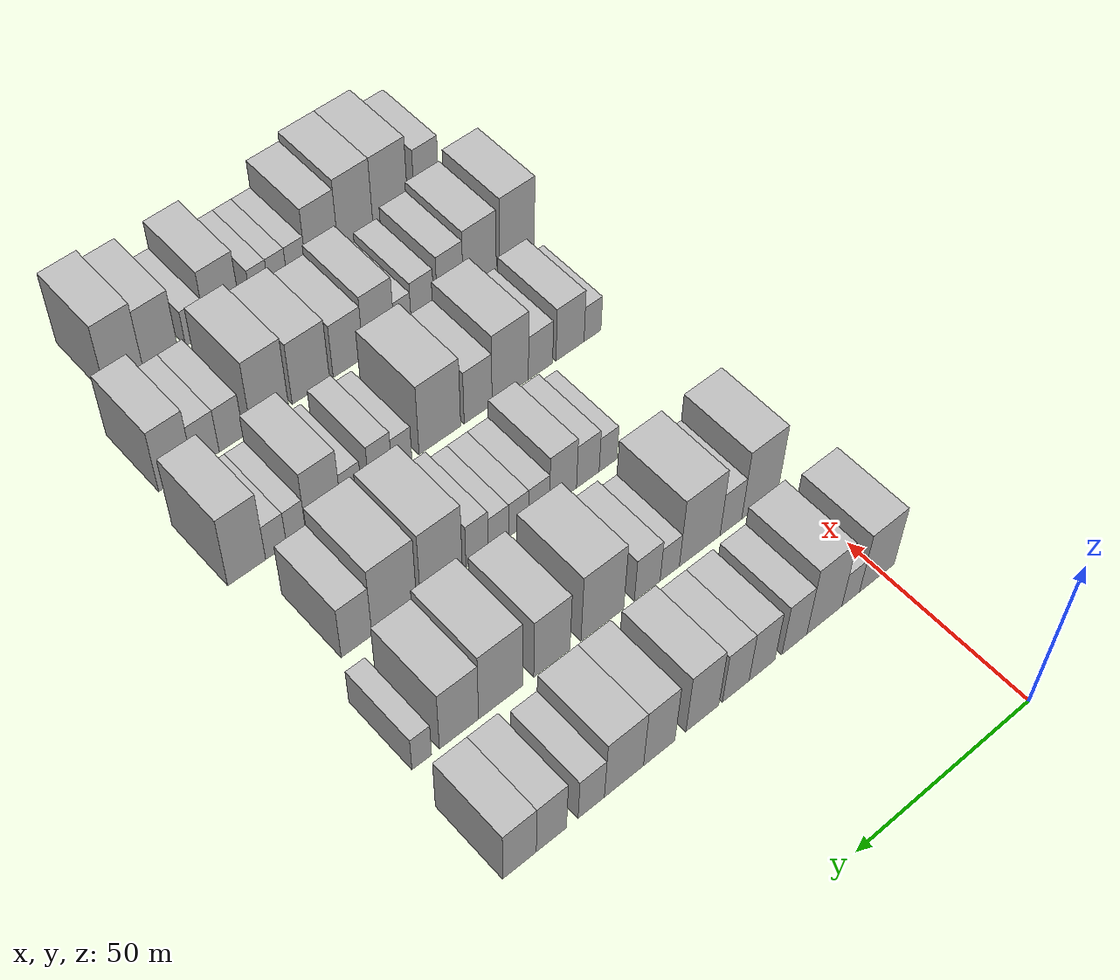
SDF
<sdf version="1.6">
 <world name="default">
  <model name="building_55">
   <static>1</static>
   <pose>50.0000 1.8225 0 0.000000 0.000000 0.000000</pose>
   <link name="link">
    <pose>0 0 10.50 0 0 0</pose>
    <collision name="collision"><geometry><box><size>20.0000 10.4575 21.0000</size></box></geometry></collision>
    <visual name="visual">
     <cast_shadows>0</cast_shadows>
     <geometry><box><size>20.0000 10.4575 21.0000</size></box></geometry>
     <material>
      <script>
       <uri>model://HANNAS_wall/materials/scripts</uri>
       <uri>model://HANNAS_wall/materials/textures</uri>
       <name>vrc/HANNAS_wall</name>
      </script>
     </material>
    </visual>
   </link>
  </model>
  <model name="building_56">
   <static>1</static>
   <pose>50.0000 9.7075 0 0.000000 0.000000 0.000000</pose>
   <link name="link">
    <pose>0 0 6.00 0 0 0</pose>
    <collision name="collision"><geometry><box><size>20.0000 5.3123 12.0000</size></box></geometry></collision>
    <visual name="visual">
     <cast_shadows>0</cast_shadows>
     <geometry><box><size>20.0000 5.3123 12.0000</size></box></geometry>
     <material>
      <script>
       <uri>model://HANNAS_wall/materials/scripts</uri>
       <uri>model://HANNAS_wall/materials/textures</uri>
       <name>vrc/HANNAS_wall</name>
      </script>
     </material>
    </visual>
   </link>
  </model>
  <model name="building_57">
   <static>1</static>
   <pose>50.0000 17.5181 0 0.000000 0.000000 0.000000</pose>
   <link name="link">
    <pose>0 0 12.00 0 0 0</pose>
    <collision name="collision"><geometry><box><size>20.0000 10.3090 24.0000</size></box></geometry></collision>
    <visual name="visual">
     <cast_shadows>0</cast_shadows>
     <geometry><box><size>20.0000 10.3090 24.0000</size></box></geometry>
     <material>
      <script>
       <uri>model://HANNAS_wall/materials/scripts</uri>
       <uri>model://HANNAS_wall/materials/textures</uri>
       <name>vrc/HANNAS_wall</name>
      </script>
     </material>
    </visual>
   </link>
  </model>
  <model name="building_58">
   <static>1</static>
   <pose>50.0000 26.2817 0 0.000000 0.000000 0.000000</pose>
   <link name="link">
    <pose>0 0 9.00 0 0 0</pose>
    <collision name="collision"><geometry><box><size>20.0000 7.2182 18.0000</size></box></geometry></collision>
    <visual name="visual">
     <cast_shadows>0</cast_shadows>
     <geometry><box><size>20.0000 7.2182 18.0000</size></box></geometry>
     <material>
      <script>
       <uri>model://HANNAS_wall/materials/scripts</uri>
       <uri>model://HANNAS_wall/materials/textures</uri>
       <name>vrc/HANNAS_wall</name>
      </script>
     </material>
    </visual>
   </link>
  </model>
  <model name="building_59">
   <static>1</static>
   <pose>50.0000 35.5803 0 0.000000 0.000000 0.000000</pose>
   <link name="link">
    <pose>0 0 9.00 0 0 0</pose>
    <collision name="collision"><geometry><box><size>20.0000 7.3790 18.0000</size></box></geometry></collision>
    <visual name="visual">
     <cast_shadows>0</cast_shadows>
     <geometry><box><size>20.0000 7.3790 18.0000</size></box></geometry>
     <material>
      <script>
       <uri>model://HANNAS_wall/materials/scripts</uri>
       <uri>model://HANNAS_wall/materials/textures</uri>
       <name>vrc/HANNAS_wall</name>
      </script>
     </material>
    </visual>
   </link>
  </model>
  <model name="building_60">
   <static>1</static>
   <pose>50.0000 43.0115 0 0.000000 0.000000 0.000000</pose>
   <link name="link">
    <pose>0 0 9.00 0 0 0</pose>
    <collision name="collision"><geometry><box><size>20.0000 7.4834 18.0000</size></box></geometry></collision>
    <visual name="visual">
     <cast_shadows>0</cast_shadows>
     <geometry><box><size>20.0000 7.4834 18.0000</size></box></geometry>
     <material>
      <script>
       <uri>model://HANNAS_wall/materials/scripts</uri>
       <uri>model://HANNAS_wall/materials/textures</uri>
       <name>vrc/HANNAS_wall</name>
      </script>
     </material>
    </visual>
   </link>
  </model>
  <model name="building_61">
   <static>1</static>
   <pose>50.0000 52.3012 0 0.000000 0.000000 0.000000</pose>
   <link name="link">
    <pose>0 0 10.50 0 0 0</pose>
    <collision name="collision"><geometry><box><size>20.0000 9.0959 21.0000</size></box></geometry></collision>
    <visual name="visual">
     <cast_shadows>0</cast_shadows>
     <geometry><box><size>20.0000 9.0959 21.0000</size></box></geometry>
     <material>
      <script>
       <uri>model://HANNAS_wall/materials/scripts</uri>
       <uri>model://HANNAS_wall/materials/textures</uri>
       <name>vrc/HANNAS_wall</name>
      </script>
     </material>
    </visual>
   </link>
  </model>
  <model name="building_62">
   <static>1</static>
   <pose>50.0000 64.0853 0 0.000000 0.000000 0.000000</pose>
   <link name="link">
    <pose>0 0 10.50 0 0 0</pose>
    <collision name="collision"><geometry><box><size>20.0000 8.4724 21.0000</size></box></geometry></collision>
    <visual name="visual">
     <cast_shadows>0</cast_shadows>
     <geometry><box><size>20.0000 8.4724 21.0000</size></box></geometry>
     <material>
      <script>
       <uri>model://HANNAS_wall/materials/scripts</uri>
       <uri>model://HANNAS_wall/materials/textures</uri>
       <name>vrc/HANNAS_wall</name>
      </script>
     </material>
    </visual>
   </link>
  </model>
  <model name="building_63">
   <static>1</static>
   <pose>50.0000 73.5073 0 0.000000 0.000000 0.000000</pose>
   <link name="link">
    <pose>0 0 10.50 0 0 0</pose>
    <collision name="collision"><geometry><box><size>20.0000 10.3717 21.0000</size></box></geometry></collision>
    <visual name="visual">
     <cast_shadows>0</cast_shadows>
     <geometry><box><size>20.0000 10.3717 21.0000</size></box></geometry>
     <material>
      <script>
       <uri>model://HANNAS_wall/materials/scripts</uri>
       <uri>model://HANNAS_wall/materials/textures</uri>
       <name>vrc/HANNAS_wall</name>
      </script>
     </material>
    </visual>
   </link>
  </model>
  <model name="building_64">
   <static>1</static>
   <pose>50.0000 82.1194 0 0.000000 0.000000 0.000000</pose>
   <link name="link">
    <pose>0 0 7.50 0 0 0</pose>
    <collision name="collision"><geometry><box><size>20.0000 6.8526 15.0000</size></box></geometry></collision>
    <visual name="visual">
     <cast_shadows>0</cast_shadows>
     <geometry><box><size>20.0000 6.8526 15.0000</size></box></geometry>
     <material>
      <script>
       <uri>model://HANNAS_wall/materials/scripts</uri>
       <uri>model://HANNAS_wall/materials/textures</uri>
       <name>vrc/HANNAS_wall</name>
      </script>
     </material>
    </visual>
   </link>
  </model>
  <model name="building_65">
   <static>1</static>
   <pose>50.0000 92.4018 0 0.000000 0.000000 0.000000</pose>
   <link name="link">
    <pose>0 0 9.00 0 0 0</pose>
    <collision name="collision"><geometry><box><size>20.0000 7.7122 18.0000</size></box></geometry></collision>
    <visual name="visual">
     <cast_shadows>0</cast_shadows>
     <geometry><box><size>20.0000 7.7122 18.0000</size></box></geometry>
     <material>
      <script>
       <uri>model://HANNAS_wall/materials/scripts</uri>
       <uri>model://HANNAS_wall/materials/textures</uri>
       <name>vrc/HANNAS_wall</name>
      </script>
     </material>
    </visual>
   </link>
  </model>
  <model name="building_66">
   <static>1</static>
   <pose>50.0000 100.4794 0 0.000000 0.000000 0.000000</pose>
   <link name="link">
    <pose>0 0 9.00 0 0 0</pose>
    <collision name="collision"><geometry><box><size>20.0000 8.4429 18.0000</size></box></geometry></collision>
    <visual name="visual">
     <cast_shadows>0</cast_shadows>
     <geometry><box><size>20.0000 8.4429 18.0000</size></box></geometry>
     <material>
      <script>
       <uri>model://HANNAS_wall/materials/scripts</uri>
       <uri>model://HANNAS_wall/materials/textures</uri>
       <name>vrc/HANNAS_wall</name>
      </script>
     </material>
    </visual>
   </link>
  </model>
  <model name="building_166">
   <static>1</static>
   <pose>79.0000 7.3273 0 0.000000 0.000000 0.000000</pose>
   <link name="link">
    <pose>0 0 12.00 0 0 0</pose>
    <collision name="collision"><geometry><box><size>20.0000 10.8859 24.0000</size></box></geometry></collision>
    <visual name="visual">
     <cast_shadows>0</cast_shadows>
     <geometry><box><size>20.0000 10.8859 24.0000</size></box></geometry>
     <material>
      <script>
       <uri>model://HANNAS_wall/materials/scripts</uri>
       <uri>model://HANNAS_wall/materials/textures</uri>
       <name>vrc/HANNAS_wall</name>
      </script>
     </material>
    </visual>
   </link>
  </model>
  <model name="building_167">
   <static>1</static>
   <pose>79.0000 15.9825 0 0.000000 0.000000 0.000000</pose>
   <link name="link">
    <pose>0 0 7.50 0 0 0</pose>
    <collision name="collision"><geometry><box><size>20.0000 6.4245 15.0000</size></box></geometry></collision>
    <visual name="visual">
     <cast_shadows>0</cast_shadows>
     <geometry><box><size>20.0000 6.4245 15.0000</size></box></geometry>
     <material>
      <script>
       <uri>model://HANNAS_wall/materials/scripts</uri>
       <uri>model://HANNAS_wall/materials/textures</uri>
       <name>vrc/HANNAS_wall</name>
      </script>
     </material>
    </visual>
   </link>
  </model>
  <model name="building_168">
   <static>1</static>
   <pose>79.0000 25.1390 0 0.000000 0.000000 0.000000</pose>
   <link name="link">
    <pose>0 0 12.00 0 0 0</pose>
    <collision name="collision"><geometry><box><size>20.0000 11.8884 24.0000</size></box></geometry></collision>
    <visual name="visual">
     <cast_shadows>0</cast_shadows>
     <geometry><box><size>20.0000 11.8884 24.0000</size></box></geometry>
     <material>
      <script>
       <uri>model://HANNAS_wall/materials/scripts</uri>
       <uri>model://HANNAS_wall/materials/textures</uri>
       <name>vrc/HANNAS_wall</name>
      </script>
     </material>
    </visual>
   </link>
  </model>
  <model name="building_169">
   <static>1</static>
   <pose>79.0000 33.8506 0 0.000000 0.000000 0.000000</pose>
   <link name="link">
    <pose>0 0 6.00 0 0 0</pose>
    <collision name="collision"><geometry><box><size>20.0000 5.5349 12.0000</size></box></geometry></collision>
    <visual name="visual">
     <cast_shadows>0</cast_shadows>
     <geometry><box><size>20.0000 5.5349 12.0000</size></box></geometry>
     <material>
      <script>
       <uri>model://HANNAS_wall/materials/scripts</uri>
       <uri>model://HANNAS_wall/materials/textures</uri>
       <name>vrc/HANNAS_wall</name>
      </script>
     </material>
    </visual>
   </link>
  </model>
  <model name="building_170">
   <static>1</static>
   <pose>79.0000 40.2593 0 0.000000 0.000000 0.000000</pose>
   <link name="link">
    <pose>0 0 7.50 0 0 0</pose>
    <collision name="collision"><geometry><box><size>20.0000 7.2825 15.0000</size></box></geometry></collision>
    <visual name="visual">
     <cast_shadows>0</cast_shadows>
     <geometry><box><size>20.0000 7.2825 15.0000</size></box></geometry>
     <material>
      <script>
       <uri>model://HANNAS_wall/materials/scripts</uri>
       <uri>model://HANNAS_wall/materials/textures</uri>
       <name>vrc/HANNAS_wall</name>
      </script>
     </material>
    </visual>
   </link>
  </model>
  <model name="building_171">
   <static>1</static>
   <pose>79.0000 52.8258 0 0.000000 0.000000 0.000000</pose>
   <link name="link">
    <pose>0 0 12.00 0 0 0</pose>
    <collision name="collision"><geometry><box><size>20.0000 11.8507 24.0000</size></box></geometry></collision>
    <visual name="visual">
     <cast_shadows>0</cast_shadows>
     <geometry><box><size>20.0000 11.8507 24.0000</size></box></geometry>
     <material>
      <script>
       <uri>model://HANNAS_wall/materials/scripts</uri>
       <uri>model://HANNAS_wall/materials/textures</uri>
       <name>vrc/HANNAS_wall</name>
      </script>
     </material>
    </visual>
   </link>
  </model>
  <model name="building_172">
   <static>1</static>
   <pose>79.0000 66.6558 0 0.000000 0.000000 0.000000</pose>
   <link name="link">
    <pose>0 0 10.50 0 0 0</pose>
    <collision name="collision"><geometry><box><size>20.0000 9.8093 21.0000</size></box></geometry></collision>
    <visual name="visual">
     <cast_shadows>0</cast_shadows>
     <geometry><box><size>20.0000 9.8093 21.0000</size></box></geometry>
     <material>
      <script>
       <uri>model://HANNAS_wall/materials/scripts</uri>
       <uri>model://HANNAS_wall/materials/textures</uri>
       <name>vrc/HANNAS_wall</name>
      </script>
     </material>
    </visual>
   </link>
  </model>
  <model name="building_173">
   <static>1</static>
   <pose>79.0000 80.3413 0 0.000000 0.000000 0.000000</pose>
   <link name="link">
    <pose>0 0 12.00 0 0 0</pose>
    <collision name="collision"><geometry><box><size>20.0000 11.5616 24.0000</size></box></geometry></collision>
    <visual name="visual">
     <cast_shadows>0</cast_shadows>
     <geometry><box><size>20.0000 11.5616 24.0000</size></box></geometry>
     <material>
      <script>
       <uri>model://HANNAS_wall/materials/scripts</uri>
       <uri>model://HANNAS_wall/materials/textures</uri>
       <name>vrc/HANNAS_wall</name>
      </script>
     </material>
    </visual>
   </link>
  </model>
  <model name="building_174">
   <static>1</static>
   <pose>79.0000 91.1802 0 0.000000 0.000000 0.000000</pose>
   <link name="link">
    <pose>0 0 10.50 0 0 0</pose>
    <collision name="collision"><geometry><box><size>20.0000 10.1164 21.0000</size></box></geometry></collision>
    <visual name="visual">
     <cast_shadows>0</cast_shadows>
     <geometry><box><size>20.0000 10.1164 21.0000</size></box></geometry>
     <material>
      <script>
       <uri>model://HANNAS_wall/materials/scripts</uri>
       <uri>model://HANNAS_wall/materials/textures</uri>
       <name>vrc/HANNAS_wall</name>
      </script>
     </material>
    </visual>
   </link>
  </model>
  <model name="building_175">
   <static>1</static>
   <pose>79.0000 100.7291 0 0.000000 0.000000 0.000000</pose>
   <link name="link">
    <pose>0 0 6.00 0 0 0</pose>
    <collision name="collision"><geometry><box><size>20.0000 4.9814 12.0000</size></box></geometry></collision>
    <visual name="visual">
     <cast_shadows>0</cast_shadows>
     <geometry><box><size>20.0000 4.9814 12.0000</size></box></geometry>
     <material>
      <script>
       <uri>model://HANNAS_wall/materials/scripts</uri>
       <uri>model://HANNAS_wall/materials/textures</uri>
       <name>vrc/HANNAS_wall</name>
      </script>
     </material>
    </visual>
   </link>
  </model>
  <model name="building_274">
   <static>1</static>
   <pose>108.0000 24.8159 0 0.000000 0.000000 0.000000</pose>
   <link name="link">
    <pose>0 0 6.00 0 0 0</pose>
    <collision name="collision"><geometry><box><size>20.0000 5.2146 12.0000</size></box></geometry></collision>
    <visual name="visual">
     <cast_shadows>0</cast_shadows>
     <geometry><box><size>20.0000 5.2146 12.0000</size></box></geometry>
     <material>
      <script>
       <uri>model://HANNAS_wall/materials/scripts</uri>
       <uri>model://HANNAS_wall/materials/textures</uri>
       <name>vrc/HANNAS_wall</name>
      </script>
     </material>
    </visual>
   </link>
  </model>
  <model name="building_275">
   <static>1</static>
   <pose>108.0000 30.7097 0 0.000000 0.000000 0.000000</pose>
   <link name="link">
    <pose>0 0 7.50 0 0 0</pose>
    <collision name="collision"><geometry><box><size>20.0000 6.5730 15.0000</size></box></geometry></collision>
    <visual name="visual">
     <cast_shadows>0</cast_shadows>
     <geometry><box><size>20.0000 6.5730 15.0000</size></box></geometry>
     <material>
      <script>
       <uri>model://HANNAS_wall/materials/scripts</uri>
       <uri>model://HANNAS_wall/materials/textures</uri>
       <name>vrc/HANNAS_wall</name>
      </script>
     </material>
    </visual>
   </link>
  </model>
  <model name="building_276">
   <static>1</static>
   <pose>108.0000 37.8702 0 0.000000 0.000000 0.000000</pose>
   <link name="link">
    <pose>0 0 9.00 0 0 0</pose>
    <collision name="collision"><geometry><box><size>20.0000 7.7480 18.0000</size></box></geometry></collision>
    <visual name="visual">
     <cast_shadows>0</cast_shadows>
     <geometry><box><size>20.0000 7.7480 18.0000</size></box></geometry>
     <material>
      <script>
       <uri>model://HANNAS_wall/materials/scripts</uri>
       <uri>model://HANNAS_wall/materials/textures</uri>
       <name>vrc/HANNAS_wall</name>
      </script>
     </material>
    </visual>
   </link>
  </model>
  <model name="building_277">
   <static>1</static>
   <pose>108.0000 44.6742 0 0.000000 0.000000 0.000000</pose>
   <link name="link">
    <pose>0 0 6.00 0 0 0</pose>
    <collision name="collision"><geometry><box><size>20.0000 5.8600 12.0000</size></box></geometry></collision>
    <visual name="visual">
     <cast_shadows>0</cast_shadows>
     <geometry><box><size>20.0000 5.8600 12.0000</size></box></geometry>
     <material>
      <script>
       <uri>model://HANNAS_wall/materials/scripts</uri>
       <uri>model://HANNAS_wall/materials/textures</uri>
       <name>vrc/HANNAS_wall</name>
      </script>
     </material>
    </visual>
   </link>
  </model>
  <model name="building_278">
   <static>1</static>
   <pose>108.0000 50.4070 0 0.000000 0.000000 0.000000</pose>
   <link name="link">
    <pose>0 0 6.00 0 0 0</pose>
    <collision name="collision"><geometry><box><size>20.0000 5.6056 12.0000</size></box></geometry></collision>
    <visual name="visual">
     <cast_shadows>0</cast_shadows>
     <geometry><box><size>20.0000 5.6056 12.0000</size></box></geometry>
     <material>
      <script>
       <uri>model://HANNAS_wall/materials/scripts</uri>
       <uri>model://HANNAS_wall/materials/textures</uri>
       <name>vrc/HANNAS_wall</name>
      </script>
     </material>
    </visual>
   </link>
  </model>
  <model name="building_279">
   <static>1</static>
   <pose>108.0000 56.0723 0 0.000000 0.000000 0.000000</pose>
   <link name="link">
    <pose>0 0 6.00 0 0 0</pose>
    <collision name="collision"><geometry><box><size>20.0000 5.7250 12.0000</size></box></geometry></collision>
    <visual name="visual">
     <cast_shadows>0</cast_shadows>
     <geometry><box><size>20.0000 5.7250 12.0000</size></box></geometry>
     <material>
      <script>
       <uri>model://HANNAS_wall/materials/scripts</uri>
       <uri>model://HANNAS_wall/materials/textures</uri>
       <name>vrc/HANNAS_wall</name>
      </script>
     </material>
    </visual>
   </link>
  </model>
  <model name="building_280">
   <static>1</static>
   <pose>108.0000 61.9787 0 0.000000 0.000000 0.000000</pose>
   <link name="link">
    <pose>0 0 7.50 0 0 0</pose>
    <collision name="collision"><geometry><box><size>20.0000 6.0879 15.0000</size></box></geometry></collision>
    <visual name="visual">
     <cast_shadows>0</cast_shadows>
     <geometry><box><size>20.0000 6.0879 15.0000</size></box></geometry>
     <material>
      <script>
       <uri>model://HANNAS_wall/materials/scripts</uri>
       <uri>model://HANNAS_wall/materials/textures</uri>
       <name>vrc/HANNAS_wall</name>
      </script>
     </material>
    </visual>
   </link>
  </model>
  <model name="building_281">
   <static>1</static>
   <pose>108.0000 71.6783 0 0.000000 0.000000 0.000000</pose>
   <link name="link">
    <pose>0 0 12.00 0 0 0</pose>
    <collision name="collision"><geometry><box><size>20.0000 11.3112 24.0000</size></box></geometry></collision>
    <visual name="visual">
     <cast_shadows>0</cast_shadows>
     <geometry><box><size>20.0000 11.3112 24.0000</size></box></geometry>
     <material>
      <script>
       <uri>model://HANNAS_wall/materials/scripts</uri>
       <uri>model://HANNAS_wall/materials/textures</uri>
       <name>vrc/HANNAS_wall</name>
      </script>
     </material>
    </visual>
   </link>
  </model>
  <model name="building_282">
   <static>1</static>
   <pose>108.0000 84.2345 0 0.000000 0.000000 0.000000</pose>
   <link name="link">
    <pose>0 0 12.00 0 0 0</pose>
    <collision name="collision"><geometry><box><size>20.0000 11.8012 24.0000</size></box></geometry></collision>
    <visual name="visual">
     <cast_shadows>0</cast_shadows>
     <geometry><box><size>20.0000 11.8012 24.0000</size></box></geometry>
     <material>
      <script>
       <uri>model://HANNAS_wall/materials/scripts</uri>
       <uri>model://HANNAS_wall/materials/textures</uri>
       <name>vrc/HANNAS_wall</name>
      </script>
     </material>
    </visual>
   </link>
  </model>
  <model name="building_283">
   <static>1</static>
   <pose>108.0000 94.1319 0 0.000000 0.000000 0.000000</pose>
   <link name="link">
    <pose>0 0 9.00 0 0 0</pose>
    <collision name="collision"><geometry><box><size>20.0000 7.9936 18.0000</size></box></geometry></collision>
    <visual name="visual">
     <cast_shadows>0</cast_shadows>
     <geometry><box><size>20.0000 7.9936 18.0000</size></box></geometry>
     <material>
      <script>
       <uri>model://HANNAS_wall/materials/scripts</uri>
       <uri>model://HANNAS_wall/materials/textures</uri>
       <name>vrc/HANNAS_wall</name>
      </script>
     </material>
    </visual>
   </link>
  </model>
  <model name="building_387">
   <static>1</static>
   <pose>137.0000 3.1404 0 0.000000 0.000000 0.000000</pose>
   <link name="link">
    <pose>0 0 6.00 0 0 0</pose>
    <collision name="collision"><geometry><box><size>20.0000 5.1594 12.0000</size></box></geometry></collision>
    <visual name="visual">
     <cast_shadows>0</cast_shadows>
     <geometry><box><size>20.0000 5.1594 12.0000</size></box></geometry>
     <material>
      <script>
       <uri>model://HANNAS_wall/materials/scripts</uri>
       <uri>model://HANNAS_wall/materials/textures</uri>
       <name>vrc/HANNAS_wall</name>
      </script>
     </material>
    </visual>
   </link>
  </model>
  <model name="building_388">
   <static>1</static>
   <pose>137.0000 9.9674 0 0.000000 0.000000 0.000000</pose>
   <link name="link">
    <pose>0 0 9.00 0 0 0</pose>
    <collision name="collision"><geometry><box><size>20.0000 8.4946 18.0000</size></box></geometry></collision>
    <visual name="visual">
     <cast_shadows>0</cast_shadows>
     <geometry><box><size>20.0000 8.4946 18.0000</size></box></geometry>
     <material>
      <script>
       <uri>model://HANNAS_wall/materials/scripts</uri>
       <uri>model://HANNAS_wall/materials/textures</uri>
       <name>vrc/HANNAS_wall</name>
      </script>
     </material>
    </visual>
   </link>
  </model>
  <model name="building_389">
   <static>1</static>
   <pose>137.0000 18.8411 0 0.000000 0.000000 0.000000</pose>
   <link name="link">
    <pose>0 0 7.50 0 0 0</pose>
    <collision name="collision"><geometry><box><size>20.0000 7.2529 15.0000</size></box></geometry></collision>
    <visual name="visual">
     <cast_shadows>0</cast_shadows>
     <geometry><box><size>20.0000 7.2529 15.0000</size></box></geometry>
     <material>
      <script>
       <uri>model://HANNAS_wall/materials/scripts</uri>
       <uri>model://HANNAS_wall/materials/textures</uri>
       <name>vrc/HANNAS_wall</name>
      </script>
     </material>
    </visual>
   </link>
  </model>
  <model name="building_390">
   <static>1</static>
   <pose>137.0000 27.7884 0 0.000000 0.000000 0.000000</pose>
   <link name="link">
    <pose>0 0 12.00 0 0 0</pose>
    <collision name="collision"><geometry><box><size>20.0000 10.6417 24.0000</size></box></geometry></collision>
    <visual name="visual">
     <cast_shadows>0</cast_shadows>
     <geometry><box><size>20.0000 10.6417 24.0000</size></box></geometry>
     <material>
      <script>
       <uri>model://HANNAS_wall/materials/scripts</uri>
       <uri>model://HANNAS_wall/materials/textures</uri>
       <name>vrc/HANNAS_wall</name>
      </script>
     </material>
    </visual>
   </link>
  </model>
  <model name="building_391">
   <static>1</static>
   <pose>137.0000 37.1500 0 0.000000 0.000000 0.000000</pose>
   <link name="link">
    <pose>0 0 9.00 0 0 0</pose>
    <collision name="collision"><geometry><box><size>20.0000 8.0815 18.0000</size></box></geometry></collision>
    <visual name="visual">
     <cast_shadows>0</cast_shadows>
     <geometry><box><size>20.0000 8.0815 18.0000</size></box></geometry>
     <material>
      <script>
       <uri>model://HANNAS_wall/materials/scripts</uri>
       <uri>model://HANNAS_wall/materials/textures</uri>
       <name>vrc/HANNAS_wall</name>
      </script>
     </material>
    </visual>
   </link>
  </model>
  <model name="building_392">
   <static>1</static>
   <pose>137.0000 48.0976 0 0.000000 0.000000 0.000000</pose>
   <link name="link">
    <pose>0 0 12.00 0 0 0</pose>
    <collision name="collision"><geometry><box><size>20.0000 11.8136 24.0000</size></box></geometry></collision>
    <visual name="visual">
     <cast_shadows>0</cast_shadows>
     <geometry><box><size>20.0000 11.8136 24.0000</size></box></geometry>
     <material>
      <script>
       <uri>model://HANNAS_wall/materials/scripts</uri>
       <uri>model://HANNAS_wall/materials/textures</uri>
       <name>vrc/HANNAS_wall</name>
      </script>
     </material>
    </visual>
   </link>
  </model>
  <model name="building_393">
   <static>1</static>
   <pose>137.0000 58.7614 0 0.000000 0.000000 0.000000</pose>
   <link name="link">
    <pose>0 0 6.00 0 0 0</pose>
    <collision name="collision"><geometry><box><size>20.0000 5.5142 12.0000</size></box></geometry></collision>
    <visual name="visual">
     <cast_shadows>0</cast_shadows>
     <geometry><box><size>20.0000 5.5142 12.0000</size></box></geometry>
     <material>
      <script>
       <uri>model://HANNAS_wall/materials/scripts</uri>
       <uri>model://HANNAS_wall/materials/textures</uri>
       <name>vrc/HANNAS_wall</name>
      </script>
     </material>
    </visual>
   </link>
  </model>
  <model name="building_394">
   <static>1</static>
   <pose>137.0000 64.6898 0 0.000000 0.000000 0.000000</pose>
   <link name="link">
    <pose>0 0 7.50 0 0 0</pose>
    <collision name="collision"><geometry><box><size>20.0000 6.3425 15.0000</size></box></geometry></collision>
    <visual name="visual">
     <cast_shadows>0</cast_shadows>
     <geometry><box><size>20.0000 6.3425 15.0000</size></box></geometry>
     <material>
      <script>
       <uri>model://HANNAS_wall/materials/scripts</uri>
       <uri>model://HANNAS_wall/materials/textures</uri>
       <name>vrc/HANNAS_wall</name>
      </script>
     </material>
    </visual>
   </link>
  </model>
  <model name="building_395">
   <static>1</static>
   <pose>137.0000 72.6884 0 0.000000 0.000000 0.000000</pose>
   <link name="link">
    <pose>0 0 6.00 0 0 0</pose>
    <collision name="collision"><geometry><box><size>20.0000 5.6548 12.0000</size></box></geometry></collision>
    <visual name="visual">
     <cast_shadows>0</cast_shadows>
     <geometry><box><size>20.0000 5.6548 12.0000</size></box></geometry>
     <material>
      <script>
       <uri>model://HANNAS_wall/materials/scripts</uri>
       <uri>model://HANNAS_wall/materials/textures</uri>
       <name>vrc/HANNAS_wall</name>
      </script>
     </material>
    </visual>
   </link>
  </model>
  <model name="building_396">
   <static>1</static>
   <pose>137.0000 80.2478 0 0.000000 0.000000 0.000000</pose>
   <link name="link">
    <pose>0 0 10.50 0 0 0</pose>
    <collision name="collision"><geometry><box><size>20.0000 9.4639 21.0000</size></box></geometry></collision>
    <visual name="visual">
     <cast_shadows>0</cast_shadows>
     <geometry><box><size>20.0000 9.4639 21.0000</size></box></geometry>
     <material>
      <script>
       <uri>model://HANNAS_wall/materials/scripts</uri>
       <uri>model://HANNAS_wall/materials/textures</uri>
       <name>vrc/HANNAS_wall</name>
      </script>
     </material>
    </visual>
   </link>
  </model>
  <model name="building_397">
   <static>1</static>
   <pose>137.0000 87.5216 0 0.000000 0.000000 0.000000</pose>
   <link name="link">
    <pose>0 0 6.00 0 0 0</pose>
    <collision name="collision"><geometry><box><size>20.0000 5.0837 12.0000</size></box></geometry></collision>
    <visual name="visual">
     <cast_shadows>0</cast_shadows>
     <geometry><box><size>20.0000 5.0837 12.0000</size></box></geometry>
     <material>
      <script>
       <uri>model://HANNAS_wall/materials/scripts</uri>
       <uri>model://HANNAS_wall/materials/textures</uri>
       <name>vrc/HANNAS_wall</name>
      </script>
     </material>
    </visual>
   </link>
  </model>
  <model name="building_398">
   <static>1</static>
   <pose>137.0000 92.8206 0 0.000000 0.000000 0.000000</pose>
   <link name="link">
    <pose>0 0 6.00 0 0 0</pose>
    <collision name="collision"><geometry><box><size>20.0000 5.5145 12.0000</size></box></geometry></collision>
    <visual name="visual">
     <cast_shadows>0</cast_shadows>
     <geometry><box><size>20.0000 5.5145 12.0000</size></box></geometry>
     <material>
      <script>
       <uri>model://HANNAS_wall/materials/scripts</uri>
       <uri>model://HANNAS_wall/materials/textures</uri>
       <name>vrc/HANNAS_wall</name>
      </script>
     </material>
    </visual>
   </link>
  </model>
  <model name="building_399">
   <static>1</static>
   <pose>137.0000 100.4986 0 0.000000 0.000000 0.000000</pose>
   <link name="link">
    <pose>0 0 12.00 0 0 0</pose>
    <collision name="collision"><geometry><box><size>20.0000 9.8414 24.0000</size></box></geometry></collision>
    <visual name="visual">
     <cast_shadows>0</cast_shadows>
     <geometry><box><size>20.0000 9.8414 24.0000</size></box></geometry>
     <material>
      <script>
       <uri>model://HANNAS_wall/materials/scripts</uri>
       <uri>model://HANNAS_wall/materials/textures</uri>
       <name>vrc/HANNAS_wall</name>
      </script>
     </material>
    </visual>
   </link>
  </model>
  <model name="building_506">
   <static>1</static>
   <pose>166.0000 0.7369 0 0.000000 0.000000 0.000000</pose>
   <link name="link">
    <pose>0 0 12.00 0 0 0</pose>
    <collision name="collision"><geometry><box><size>20.0000 10.6749 24.0000</size></box></geometry></collision>
    <visual name="visual">
     <cast_shadows>0</cast_shadows>
     <geometry><box><size>20.0000 10.6749 24.0000</size></box></geometry>
     <material>
      <script>
       <uri>model://HANNAS_wall/materials/scripts</uri>
       <uri>model://HANNAS_wall/materials/textures</uri>
       <name>vrc/HANNAS_wall</name>
      </script>
     </material>
    </visual>
   </link>
  </model>
  <model name="building_507">
   <static>1</static>
   <pose>166.0000 12.1004 0 0.000000 0.000000 0.000000</pose>
   <link name="link">
    <pose>0 0 10.50 0 0 0</pose>
    <collision name="collision"><geometry><box><size>20.0000 10.0521 21.0000</size></box></geometry></collision>
    <visual name="visual">
     <cast_shadows>0</cast_shadows>
     <geometry><box><size>20.0000 10.0521 21.0000</size></box></geometry>
     <material>
      <script>
       <uri>model://HANNAS_wall/materials/scripts</uri>
       <uri>model://HANNAS_wall/materials/textures</uri>
       <name>vrc/HANNAS_wall</name>
      </script>
     </material>
    </visual>
   </link>
  </model>
  <model name="building_508">
   <static>1</static>
   <pose>166.0000 20.9858 0 0.000000 0.000000 0.000000</pose>
   <link name="link">
    <pose>0 0 9.00 0 0 0</pose>
    <collision name="collision"><geometry><box><size>20.0000 7.7186 18.0000</size></box></geometry></collision>
    <visual name="visual">
     <cast_shadows>0</cast_shadows>
     <geometry><box><size>20.0000 7.7186 18.0000</size></box></geometry>
     <material>
      <script>
       <uri>model://HANNAS_wall/materials/scripts</uri>
       <uri>model://HANNAS_wall/materials/textures</uri>
       <name>vrc/HANNAS_wall</name>
      </script>
     </material>
    </visual>
   </link>
  </model>
  <model name="building_509">
   <static>1</static>
   <pose>166.0000 29.1914 0 0.000000 0.000000 0.000000</pose>
   <link name="link">
    <pose>0 0 7.50 0 0 0</pose>
    <collision name="collision"><geometry><box><size>20.0000 6.6926 15.0000</size></box></geometry></collision>
    <visual name="visual">
     <cast_shadows>0</cast_shadows>
     <geometry><box><size>20.0000 6.6926 15.0000</size></box></geometry>
     <material>
      <script>
       <uri>model://HANNAS_wall/materials/scripts</uri>
       <uri>model://HANNAS_wall/materials/textures</uri>
       <name>vrc/HANNAS_wall</name>
      </script>
     </material>
    </visual>
   </link>
  </model>
  <model name="building_510">
   <static>1</static>
   <pose>166.0000 34.9953 0 0.000000 0.000000 0.000000</pose>
   <link name="link">
    <pose>0 0 6.00 0 0 0</pose>
    <collision name="collision"><geometry><box><size>20.0000 4.9152 12.0000</size></box></geometry></collision>
    <visual name="visual">
     <cast_shadows>0</cast_shadows>
     <geometry><box><size>20.0000 4.9152 12.0000</size></box></geometry>
     <material>
      <script>
       <uri>model://HANNAS_wall/materials/scripts</uri>
       <uri>model://HANNAS_wall/materials/textures</uri>
       <name>vrc/HANNAS_wall</name>
      </script>
     </material>
    </visual>
   </link>
  </model>
  <model name="building_511">
   <static>1</static>
   <pose>166.0000 41.9476 0 0.000000 0.000000 0.000000</pose>
   <link name="link">
    <pose>0 0 10.50 0 0 0</pose>
    <collision name="collision"><geometry><box><size>20.0000 8.9893 21.0000</size></box></geometry></collision>
    <visual name="visual">
     <cast_shadows>0</cast_shadows>
     <geometry><box><size>20.0000 8.9893 21.0000</size></box></geometry>
     <material>
      <script>
       <uri>model://HANNAS_wall/materials/scripts</uri>
       <uri>model://HANNAS_wall/materials/textures</uri>
       <name>vrc/HANNAS_wall</name>
      </script>
     </material>
    </visual>
   </link>
  </model>
  <model name="building_512">
   <static>1</static>
   <pose>166.0000 50.7781 0 0.000000 0.000000 0.000000</pose>
   <link name="link">
    <pose>0 0 9.00 0 0 0</pose>
    <collision name="collision"><geometry><box><size>20.0000 8.6716 18.0000</size></box></geometry></collision>
    <visual name="visual">
     <cast_shadows>0</cast_shadows>
     <geometry><box><size>20.0000 8.6716 18.0000</size></box></geometry>
     <material>
      <script>
       <uri>model://HANNAS_wall/materials/scripts</uri>
       <uri>model://HANNAS_wall/materials/textures</uri>
       <name>vrc/HANNAS_wall</name>
      </script>
     </material>
    </visual>
   </link>
  </model>
  <model name="building_513">
   <static>1</static>
   <pose>166.0000 61.3479 0 0.000000 0.000000 0.000000</pose>
   <link name="link">
    <pose>0 0 10.50 0 0 0</pose>
    <collision name="collision"><geometry><box><size>20.0000 10.4680 21.0000</size></box></geometry></collision>
    <visual name="visual">
     <cast_shadows>0</cast_shadows>
     <geometry><box><size>20.0000 10.4680 21.0000</size></box></geometry>
     <material>
      <script>
       <uri>model://HANNAS_wall/materials/scripts</uri>
       <uri>model://HANNAS_wall/materials/textures</uri>
       <name>vrc/HANNAS_wall</name>
      </script>
     </material>
    </visual>
   </link>
  </model>
  <model name="building_514">
   <static>1</static>
   <pose>166.0000 72.7493 0 0.000000 0.000000 0.000000</pose>
   <link name="link">
    <pose>0 0 12.00 0 0 0</pose>
    <collision name="collision"><geometry><box><size>20.0000 10.3348 24.0000</size></box></geometry></collision>
    <visual name="visual">
     <cast_shadows>0</cast_shadows>
     <geometry><box><size>20.0000 10.3348 24.0000</size></box></geometry>
     <material>
      <script>
       <uri>model://HANNAS_wall/materials/scripts</uri>
       <uri>model://HANNAS_wall/materials/textures</uri>
       <name>vrc/HANNAS_wall</name>
      </script>
     </material>
    </visual>
   </link>
  </model>
  <model name="building_515">
   <static>1</static>
   <pose>166.0000 83.2134 0 0.000000 0.000000 0.000000</pose>
   <link name="link">
    <pose>0 0 7.50 0 0 0</pose>
    <collision name="collision"><geometry><box><size>20.0000 6.5932 15.0000</size></box></geometry></collision>
    <visual name="visual">
     <cast_shadows>0</cast_shadows>
     <geometry><box><size>20.0000 6.5932 15.0000</size></box></geometry>
     <material>
      <script>
       <uri>model://HANNAS_wall/materials/scripts</uri>
       <uri>model://HANNAS_wall/materials/textures</uri>
       <name>vrc/HANNAS_wall</name>
      </script>
     </material>
    </visual>
   </link>
  </model>
  <model name="building_516">
   <static>1</static>
   <pose>166.0000 90.0048 0 0.000000 0.000000 0.000000</pose>
   <link name="link">
    <pose>0 0 7.50 0 0 0</pose>
    <collision name="collision"><geometry><box><size>20.0000 6.9897 15.0000</size></box></geometry></collision>
    <visual name="visual">
     <cast_shadows>0</cast_shadows>
     <geometry><box><size>20.0000 6.9897 15.0000</size></box></geometry>
     <material>
      <script>
       <uri>model://HANNAS_wall/materials/scripts</uri>
       <uri>model://HANNAS_wall/materials/textures</uri>
       <name>vrc/HANNAS_wall</name>
      </script>
     </material>
    </visual>
   </link>
  </model>
  <model name="building_517">
   <static>1</static>
   <pose>166.0000 98.0292 0 0.000000 0.000000 0.000000</pose>
   <link name="link">
    <pose>0 0 10.50 0 0 0</pose>
    <collision name="collision"><geometry><box><size>20.0000 9.0591 21.0000</size></box></geometry></collision>
    <visual name="visual">
     <cast_shadows>0</cast_shadows>
     <geometry><box><size>20.0000 9.0591 21.0000</size></box></geometry>
     <material>
      <script>
       <uri>model://HANNAS_wall/materials/scripts</uri>
       <uri>model://HANNAS_wall/materials/textures</uri>
       <name>vrc/HANNAS_wall</name>
      </script>
     </material>
    </visual>
   </link>
  </model>
  <model name="building_618">
   <static>1</static>
   <pose>195.0000 4.2529 0 0.000000 0.000000 0.000000</pose>
   <link name="link">
    <pose>0 0 9.00 0 0 0</pose>
    <collision name="collision"><geometry><box><size>20.0000 7.5356 18.0000</size></box></geometry></collision>
    <visual name="visual">
     <cast_shadows>0</cast_shadows>
     <geometry><box><size>20.0000 7.5356 18.0000</size></box></geometry>
     <material>
      <script>
       <uri>model://HANNAS_wall/materials/scripts</uri>
       <uri>model://HANNAS_wall/materials/textures</uri>
       <name>vrc/HANNAS_wall</name>
      </script>
     </material>
    </visual>
   </link>
  </model>
  <model name="building_619">
   <static>1</static>
   <pose>195.0000 15.2987 0 0.000000 0.000000 0.000000</pose>
   <link name="link">
    <pose>0 0 12.00 0 0 0</pose>
    <collision name="collision"><geometry><box><size>20.0000 10.5560 24.0000</size></box></geometry></collision>
    <visual name="visual">
     <cast_shadows>0</cast_shadows>
     <geometry><box><size>20.0000 10.5560 24.0000</size></box></geometry>
     <material>
      <script>
       <uri>model://HANNAS_wall/materials/scripts</uri>
       <uri>model://HANNAS_wall/materials/textures</uri>
       <name>vrc/HANNAS_wall</name>
      </script>
     </material>
    </visual>
   </link>
  </model>
  <model name="building_620">
   <static>1</static>
   <pose>195.0000 25.8015 0 0.000000 0.000000 0.000000</pose>
   <link name="link">
    <pose>0 0 12.00 0 0 0</pose>
    <collision name="collision"><geometry><box><size>20.0000 10.4497 24.0000</size></box></geometry></collision>
    <visual name="visual">
     <cast_shadows>0</cast_shadows>
     <geometry><box><size>20.0000 10.4497 24.0000</size></box></geometry>
     <material>
      <script>
       <uri>model://HANNAS_wall/materials/scripts</uri>
       <uri>model://HANNAS_wall/materials/textures</uri>
       <name>vrc/HANNAS_wall</name>
      </script>
     </material>
    </visual>
   </link>
  </model>
  <model name="building_621">
   <static>1</static>
   <pose>195.0000 35.7359 0 0.000000 0.000000 0.000000</pose>
   <link name="link">
    <pose>0 0 10.50 0 0 0</pose>
    <collision name="collision"><geometry><box><size>20.0000 9.4189 21.0000</size></box></geometry></collision>
    <visual name="visual">
     <cast_shadows>0</cast_shadows>
     <geometry><box><size>20.0000 9.4189 21.0000</size></box></geometry>
     <material>
      <script>
       <uri>model://HANNAS_wall/materials/scripts</uri>
       <uri>model://HANNAS_wall/materials/textures</uri>
       <name>vrc/HANNAS_wall</name>
      </script>
     </material>
    </visual>
   </link>
  </model>
  <model name="building_622">
   <static>1</static>
   <pose>195.0000 43.1896 0 0.000000 0.000000 0.000000</pose>
   <link name="link">
    <pose>0 0 6.00 0 0 0</pose>
    <collision name="collision"><geometry><box><size>20.0000 5.4886 12.0000</size></box></geometry></collision>
    <visual name="visual">
     <cast_shadows>0</cast_shadows>
     <geometry><box><size>20.0000 5.4886 12.0000</size></box></geometry>
     <material>
      <script>
       <uri>model://HANNAS_wall/materials/scripts</uri>
       <uri>model://HANNAS_wall/materials/textures</uri>
       <name>vrc/HANNAS_wall</name>
      </script>
     </material>
    </visual>
   </link>
  </model>
  <model name="building_623">
   <static>1</static>
   <pose>195.0000 48.5783 0 0.000000 0.000000 0.000000</pose>
   <link name="link">
    <pose>0 0 6.00 0 0 0</pose>
    <collision name="collision"><geometry><box><size>20.0000 5.2889 12.0000</size></box></geometry></collision>
    <visual name="visual">
     <cast_shadows>0</cast_shadows>
     <geometry><box><size>20.0000 5.2889 12.0000</size></box></geometry>
     <material>
      <script>
       <uri>model://HANNAS_wall/materials/scripts</uri>
       <uri>model://HANNAS_wall/materials/textures</uri>
       <name>vrc/HANNAS_wall</name>
      </script>
     </material>
    </visual>
   </link>
  </model>
  <model name="building_624">
   <static>1</static>
   <pose>195.0000 53.8102 0 0.000000 0.000000 0.000000</pose>
   <link name="link">
    <pose>0 0 6.00 0 0 0</pose>
    <collision name="collision"><geometry><box><size>20.0000 5.1748 12.0000</size></box></geometry></collision>
    <visual name="visual">
     <cast_shadows>0</cast_shadows>
     <geometry><box><size>20.0000 5.1748 12.0000</size></box></geometry>
     <material>
      <script>
       <uri>model://HANNAS_wall/materials/scripts</uri>
       <uri>model://HANNAS_wall/materials/textures</uri>
       <name>vrc/HANNAS_wall</name>
      </script>
     </material>
    </visual>
   </link>
  </model>
  <model name="building_625">
   <static>1</static>
   <pose>195.0000 64.2279 0 0.000000 0.000000 0.000000</pose>
   <link name="link">
    <pose>0 0 10.50 0 0 0</pose>
    <collision name="collision"><geometry><box><size>20.0000 9.6605 21.0000</size></box></geometry></collision>
    <visual name="visual">
     <cast_shadows>0</cast_shadows>
     <geometry><box><size>20.0000 9.6605 21.0000</size></box></geometry>
     <material>
      <script>
       <uri>model://HANNAS_wall/materials/scripts</uri>
       <uri>model://HANNAS_wall/materials/textures</uri>
       <name>vrc/HANNAS_wall</name>
      </script>
     </material>
    </visual>
   </link>
  </model>
  <model name="building_626">
   <static>1</static>
   <pose>195.0000 71.9462 0 0.000000 0.000000 0.000000</pose>
   <link name="link">
    <pose>0 0 6.00 0 0 0</pose>
    <collision name="collision"><geometry><box><size>20.0000 5.7762 12.0000</size></box></geometry></collision>
    <visual name="visual">
     <cast_shadows>0</cast_shadows>
     <geometry><box><size>20.0000 5.7762 12.0000</size></box></geometry>
     <material>
      <script>
       <uri>model://HANNAS_wall/materials/scripts</uri>
       <uri>model://HANNAS_wall/materials/textures</uri>
       <name>vrc/HANNAS_wall</name>
      </script>
     </material>
    </visual>
   </link>
  </model>
  <model name="building_627">
   <static>1</static>
   <pose>195.0000 81.5469 0 0.000000 0.000000 0.000000</pose>
   <link name="link">
    <pose>0 0 10.50 0 0 0</pose>
    <collision name="collision"><geometry><box><size>20.0000 9.4251 21.0000</size></box></geometry></collision>
    <visual name="visual">
     <cast_shadows>0</cast_shadows>
     <geometry><box><size>20.0000 9.4251 21.0000</size></box></geometry>
     <material>
      <script>
       <uri>model://HANNAS_wall/materials/scripts</uri>
       <uri>model://HANNAS_wall/materials/textures</uri>
       <name>vrc/HANNAS_wall</name>
      </script>
     </material>
    </visual>
   </link>
  </model>
  <model name="building_628">
   <static>1</static>
   <pose>195.0000 91.3522 0 0.000000 0.000000 0.000000</pose>
   <link name="link">
    <pose>0 0 12.00 0 0 0</pose>
    <collision name="collision"><geometry><box><size>20.0000 10.1855 24.0000</size></box></geometry></collision>
    <visual name="visual">
     <cast_shadows>0</cast_shadows>
     <geometry><box><size>20.0000 10.1855 24.0000</size></box></geometry>
     <material>
      <script>
       <uri>model://HANNAS_wall/materials/scripts</uri>
       <uri>model://HANNAS_wall/materials/textures</uri>
       <name>vrc/HANNAS_wall</name>
      </script>
     </material>
    </visual>
   </link>
  </model>
 </world>
</sdf>
